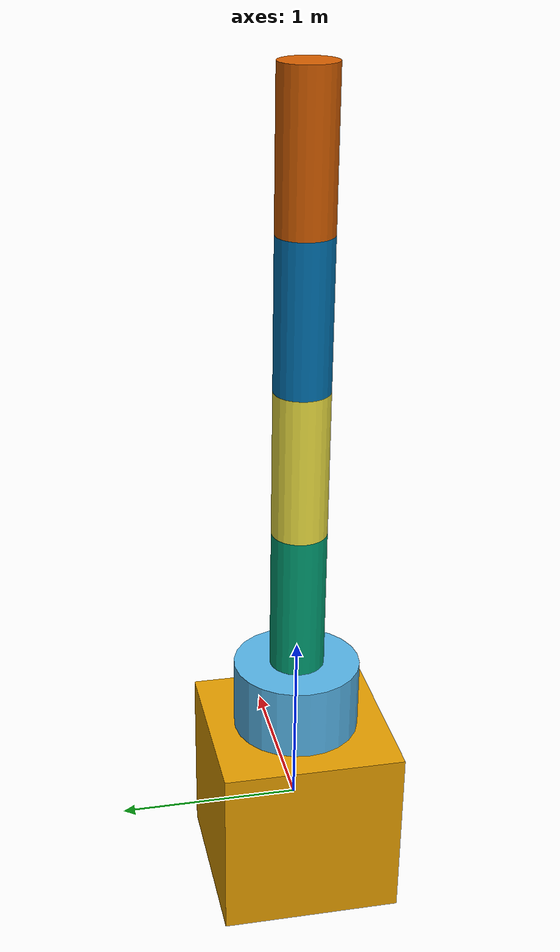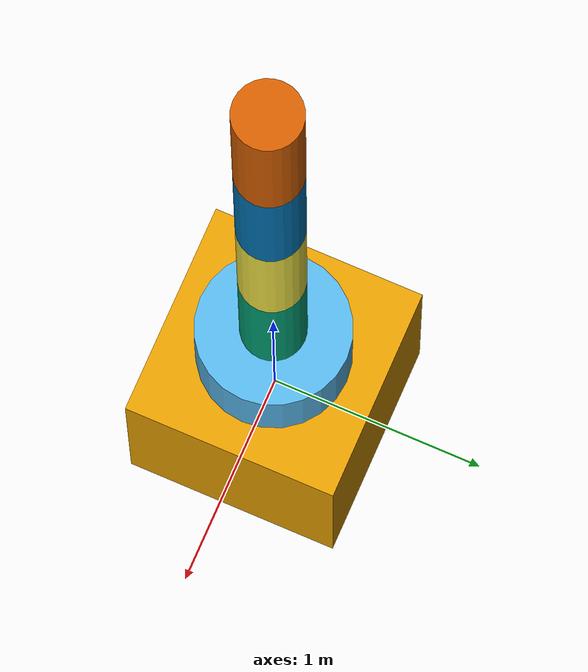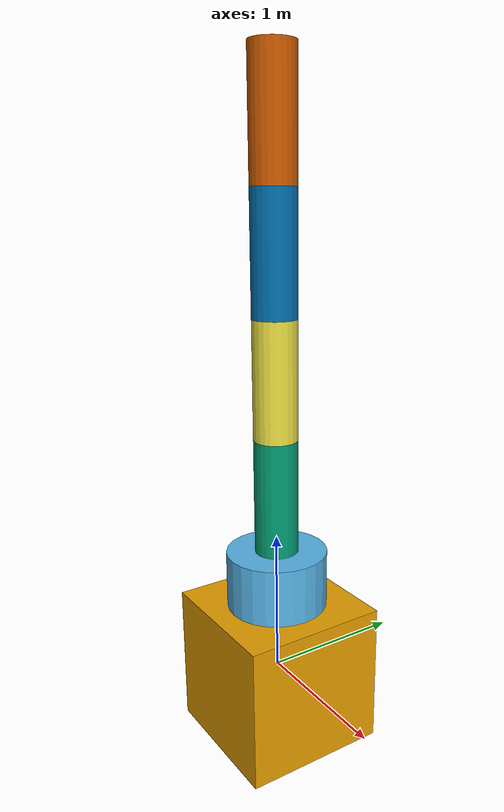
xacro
<?xml version="1.0" ?>

<robot name="myfirst" xmlns:xacro="http://www.ros.org/wiki/xacro">

    <xacro:property name="lower" value="-1.5708" />
    <xacro:property name="upper" value="1.5708" />

    <link name="base_link">
        <visual>
            <origin rpy="0 0 0" xyz="0 0 0"/>
            <geometry>
                <box size="1 1 1"/>
            </geometry>
        </visual>
        <collision>
            <origin rpy="0 0 0" xyz="0 0 0"/>
            <geometry>
                <box size="1 1 1"/>
            </geometry>
        </collision>
    </link>

    <joint name="base_link__link_01" type="revolute">
        <axis xyz="0 0 0.5" />
        <limit effort="1000.0" lower="${lower}" upper="${upper}" velocity="0.5" />
        <origin rpy="0 0 0" xyz="0 0 0.5"/>
        <parent link="base_link"/>
        <child link="link1"/>
    </joint>

    <link name="link1">
        <visual>
            <origin rpy="0 0 0" xyz="0 0 0.2"/>
            <geometry>
                <cylinder radius="0.35" length="0.4"/>
            </geometry>
        </visual>
        <collision>
            <origin rpy="0 0 0" xyz="0 0 0.2"/>
            <geometry>
                <cylinder radius="0.35" length="0.4"/>
            </geometry>
        </collision>
    </link>

    <joint name="link_01__link_02" type="revolute">
        <axis xyz="0 0.4 0" />
        <limit effort="1000.0" lower="${lower}" upper="${upper}" velocity="0.5" />
        <origin rpy="0 0 0" xyz="0 0 0.4"/>
        <parent link="link1"/>
        <child link="link2"/>
    </joint>

    <link name="link2">
        <visual>
            <origin rpy="0 0 0" xyz="0 0 0.4"/>
            <geometry>
                <cylinder radius="0.15" length="0.8"/>
            </geometry>
        </visual>
        <collision>
            <origin rpy="0 0 0" xyz="0 0 0.4"/>
            <geometry>
                <cylinder radius="0.15" length="0.8"/>
            </geometry>
        </collision>
    </link>

    <joint name="link_02__link_03" type="revolute">
        <axis xyz="0 0.8 0" />
        <limit effort="1000.0" lower="${lower}" upper="${upper}" velocity="0.5" />
        <origin rpy="0 0 0" xyz="0 0 0.8"/>
        <parent link="link2"/>
        <child link="link3"/>
    </joint>

    <link name="link3">
        <visual>
            <origin rpy="0 0 0" xyz="0 0 0.4"/>
            <geometry>
                <cylinder radius="0.15" length="0.8"/>
            </geometry>
        </visual>
        <collision>
            <origin rpy="0 0 0" xyz="0 0 0.4"/>
            <geometry>
                <cylinder radius="0.15" length="0.8"/>
            </geometry>
        </collision>
    </link>

    <joint name="link_03__link_04" type="revolute">
        <axis xyz="0 0.8 0" />
        <limit effort="1000.0" lower="${lower}" upper="${upper}" velocity="0.5" />
        <origin rpy="0 0 0" xyz="0 0 0.8"/>
        <parent link="link3"/>
        <child link="link4"/>
    </joint>

    <link name="link4">
        <visual>
            <origin rpy="0 0 0" xyz="0 0 0.4"/>
            <geometry>
                <cylinder radius="0.15" length="0.8"/>
            </geometry>
        </visual>
        <collision>
            <origin rpy="0 0 0" xyz="0 0 0.4"/>
            <geometry>
                <cylinder radius="0.15" length="0.8"/>
            </geometry>
        </collision>
    </link>
     <joint name="link_04__link_05" type="revolute">
        <axis xyz="0 0.8 0" />
        <limit effort="1000.0" lower="${lower}" upper="${upper}" velocity="0.5" />
        <origin rpy="0 0 0" xyz="0 0 0.8"/>
        <parent link="link4"/>
        <child link="link5"/>
    </joint>

    <link name="link5">
        <visual>
            <origin rpy="0 0 0" xyz="0 0 0.4"/>
            <geometry>
                <cylinder radius="0.15" length="0.8"/>
            </geometry>
        </visual>
        <collision>
            <origin rpy="0 0 0" xyz="0 0 0.4"/>
            <geometry>
                <cylinder radius="0.15" length="0.8"/>
            </geometry>
        </collision>
    </link>

    <gazebo>
      <plugin name="gazebo_ros_control" filename="libgazebo_ros_control.so">
      </plugin>
    </gazebo>

</robot>
